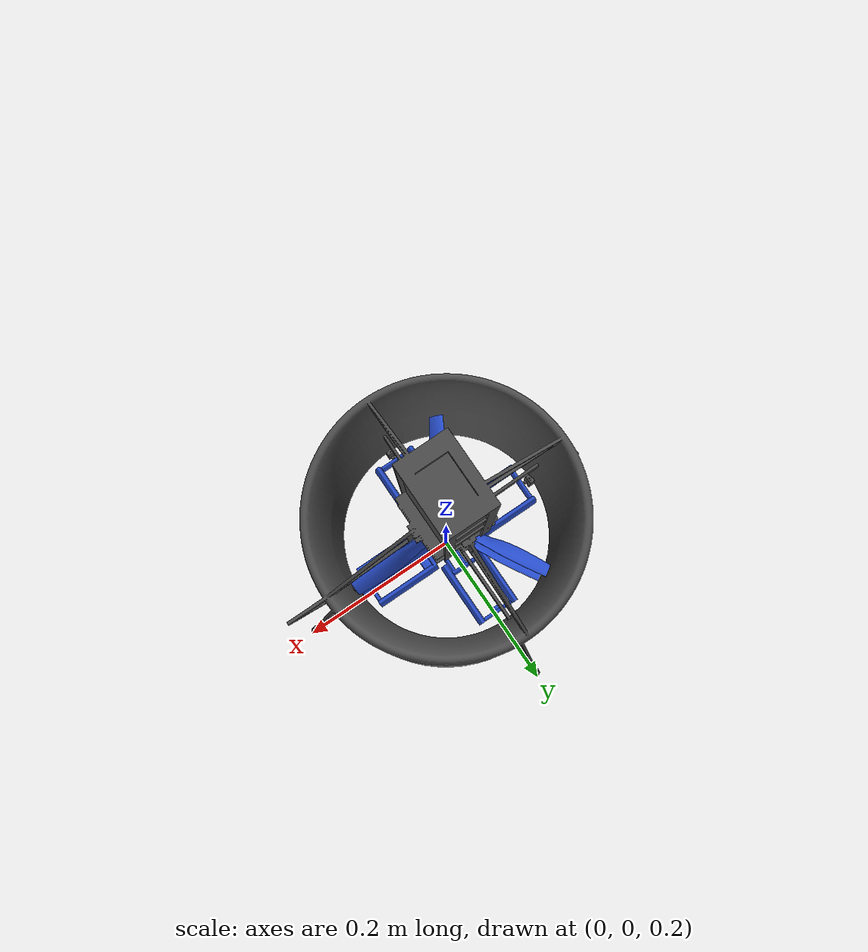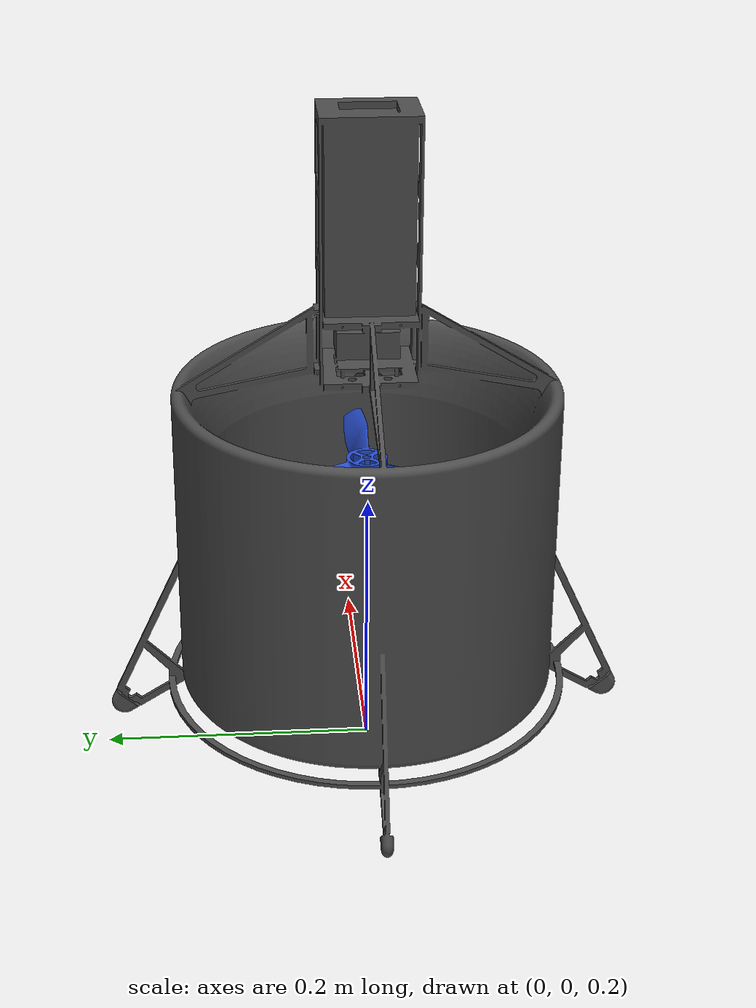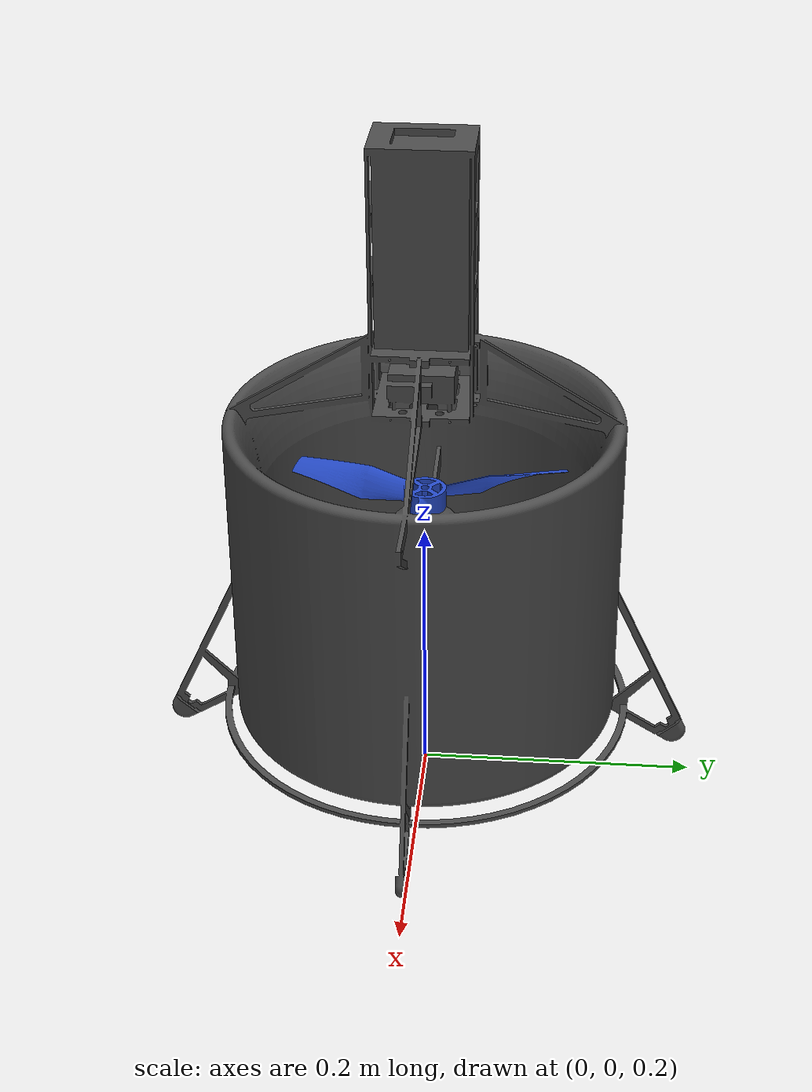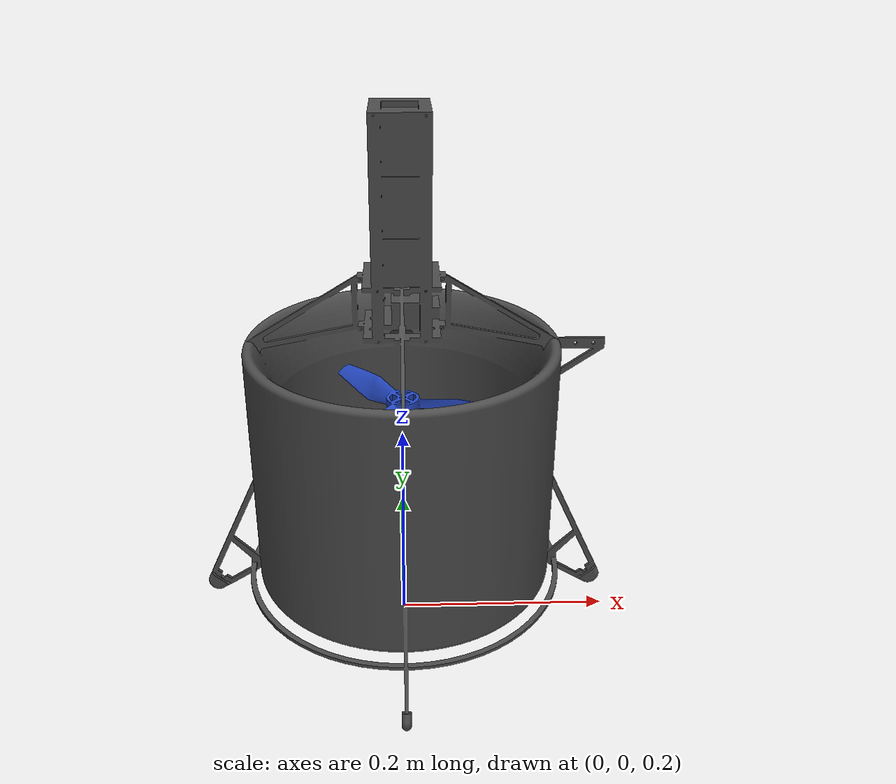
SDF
<?xml version="1.0"?>
<sdf version='1.5'>
  <model name='ductedfan2'>
    <pose>0 0 0.5 0 0 0</pose>
    <link name='base_link'>
      <pose>0 0 0 0 0 0</pose>
      <inertial>
          <mass>1.51082</mass>
          <inertia>
            <ixx>0.0276508</ixx>
            <ixy>0</ixy>
            <ixz>0.00026669</ixz>
            <iyy>0.0275263</iyy>
            <iyz>0.00028741</iyz>
            <izz>0.00619679</izz>
          </inertia>
          <pose>-4.1e-05 -7.6e-05 0.042069 0 -0 0</pose>
      </inertial>
      <collision name='base_link_collision'>
        <geometry>
          <box>
            <size>0.25 0.25 0.52</size>
          </box>
        </geometry>
      </collision>
      <visual name='base_link_visual'>
        <pose>0.0 0 -0.0 0 0 0</pose>
        <geometry>
          <mesh>
            <scale>1 1 1</scale>
            <uri>model://ductedfan2/meshes/DF - Product-gazebo-1.STL</uri>
          </mesh>
        </geometry>
        <material>
          <script>
            <name>Gazebo/DarkGrey</name>
            <uri>__default__</uri>
          </script>
        </material>
      </visual>
      <gravity>1</gravity>
      <velocity_decay/>
      <self_collide>0</self_collide>
    </link>
    <link name='ductedfan2/imu_link'>
      <pose>0 0 0 0 0 0</pose>
      <inertial>
        <pose>0 0 0 0 0 0</pose>
        <mass>0.015</mass>
        <inertia>
          <ixx>1e-05</ixx>
          <ixy>0</ixy>
          <ixz>0</ixz>
          <iyy>1e-05</iyy>
          <iyz>0</iyz>
          <izz>1e-05</izz>
        </inertia>
      </inertial>
    </link>
    <joint name='ductedfan2/imu_joint' type='revolute'>
      <child>ductedfan2/imu_link</child>
      <parent>base_link</parent>
      <axis>
        <xyz>1 0 0</xyz>
        <limit>
          <lower>0</lower>
          <upper>0</upper>
          <effort>0</effort>
          <velocity>0</velocity>
        </limit>
        <dynamics>
          <spring_reference>0</spring_reference>
          <spring_stiffness>0</spring_stiffness>
        </dynamics>
        <use_parent_model_frame>1</use_parent_model_frame>
      </axis>
    </joint>
    <link name='cspitch'>
      <inertial>
        <mass>0.149682</mass>
        <inertia>
          <ixx>0.00066011</ixx>
          <ixy>0</ixy>
          <ixz>0</ixz>
          <iyy>8.5e-05</iyy>
          <iyz>0</iyz>
          <izz>0.000689</izz>
        </inertia>
        <pose>0.000401 0 -0.210756 0 -0 0</pose>
      </inertial>
      <pose>0 0 0 0 -0 0</pose>
      <gravity>1</gravity>
      <self_collide>0</self_collide>
      <kinematic>0</kinematic>
      <enable_wind>0</enable_wind>
      <visual name='visual'>
        <pose>0 0 0 0 -0 0</pose>
        <geometry>
          <mesh>
            <uri>model://ductedfan2/meshes/DF - control surface-60-2-1.STL</uri>
            <scale>1 1 1</scale>
          </mesh>
        </geometry>
        <material>
          <script>
            <name>Gazebo/Blue</name>
            <uri>__default__</uri>
          </script>
        </material>
        <transparency>0</transparency>
        <cast_shadows>1</cast_shadows>
      </visual>
    </link>
    <link name='csroll'>
      <inertial>
        <mass>0.138453</mass>
        <inertia>
          <ixx>9.877e-05</ixx>
          <ixy>0</ixy>
          <ixz>0</ixz>
          <iyy>0.00067119</iyy>
          <iyz>0</iyz>
          <izz>0.00068256</izz>
        </inertia>
        <pose>0 0.000824 -0.20992 0 -0 0</pose>
      </inertial>
      <pose>0 0 0 0 -0 0</pose>
      <gravity>1</gravity>
      <self_collide>0</self_collide>
      <kinematic>0</kinematic>
      <enable_wind>0</enable_wind>
      <visual name='visual'>
        <pose>0 0 0 0 -0 0</pose>
        <geometry>
          <mesh>
            <uri>model://ductedfan2/meshes/DF - control surface-60-67-3.STL</uri>
            <scale>1 1 1</scale>
          </mesh>
        </geometry>
        <material>
          <script>
            <name>Gazebo/Blue</name>
            <uri>__default__</uri>
          </script>
        </material>
        <transparency>0</transparency>
        <cast_shadows>1</cast_shadows>
      </visual>
    </link>
    <link name='r1'>
      <inertial>
        <mass>0.015678</mass>
        <inertia>
          <ixx>1.851e-05</ixx>
          <ixy>0</ixy>
          <ixz>0</ixz>
          <iyy>1.855e-05</iyy>
          <iyz>0</iyz>
          <izz>3.648e-05</izz>
        </inertia>
        <pose>0.000403 0.000759 -0.071513 0 -0 0</pose>
      </inertial>
      <pose>0 0 0 0 -0 0</pose>
      <gravity>1</gravity>
      <self_collide>0</self_collide>
      <kinematic>0</kinematic>
      <enable_wind>0</enable_wind>
      <visual name='visual'>
        <pose>0 0 0 0 -0 0</pose>
        <geometry>
          <mesh>
            <uri>model://ductedfan2/meshes/DF - fan-1.STL</uri>
            <scale>1 1 1</scale>
          </mesh>
        </geometry>
        <material>
          <script>
            <name>Gazebo/Blue</name>
            <uri>__default__</uri>
          </script>
        </material>
        <transparency>0</transparency>
        <cast_shadows>1</cast_shadows>
      </visual>
    </link>
    <link name='r2'>
      <inertial>
        <mass>0.015678</mass>
        <inertia>
          <ixx>1.851e-05</ixx>
          <ixy>0</ixy>
          <ixz>0</ixz>
          <iyy>1.855e-05</iyy>
          <iyz>0</iyz>
          <izz>3.648e-05</izz>
        </inertia>
        <pose>0.000403 0.000759 -0.154513 0 -0 0</pose>
      </inertial>
      <pose>0 0 0 0 -0 0</pose>
      <gravity>1</gravity>
      <self_collide>0</self_collide>
      <kinematic>0</kinematic>
      <enable_wind>0</enable_wind>
      <visual name='visual'>
        <pose>0 0 0 0 -0 0</pose>
        <geometry>
          <mesh>
            <uri>model://ductedfan2/meshes/DF - fan-2.STL</uri>
            <scale>1 1 1</scale>
          </mesh>
        </geometry>
        <material>
          <script>
            <name>Gazebo/Blue</name>
            <uri>__default__</uri>
          </script>
        </material>
        <transparency>0</transparency>
        <cast_shadows>1</cast_shadows>
      </visual>
    </link>
    <joint name='cspitch_joint' type='revolute'>
      <parent>base_link</parent>
      <child>cspitch</child>
      <pose>0.00037 0 -0.19763 0 -0 0</pose>
      <axis>
        <xyz>0 1 0</xyz>
        <limit>
          <lower>-0.35</lower>
          <upper>0.35</upper>
        </limit>
        <dynamics>
          <damping>0.01</damping>
          <friction>0.0</friction>
          <spring_reference>0</spring_reference>
          <spring_stiffness>0</spring_stiffness>
        </dynamics>
      </axis>
    </joint>
    <joint name='csroll_joint' type='revolute'>
      <parent>base_link</parent>
      <child>csroll</child>
      <pose>0 0.00074 -0.19763 0 -0 0</pose>
      <axis>
        <xyz>1 0 0</xyz>
        <limit>
          <lower>-0.35</lower>
          <upper>0.35</upper>
        </limit>
        <dynamics>
          <damping>0.01</damping>
          <friction>0.0</friction>
          <spring_reference>0</spring_reference>
          <spring_stiffness>0</spring_stiffness>
        </dynamics>
      </axis>
    </joint>
    <joint name='r1_joint' type='revolute'>
      <parent>base_link</parent>
      <child>r1</child>
      <pose>0.000403 0.000759 -0.071513 0 -0 0</pose>
      <axis>
        <xyz>0 0 1</xyz>
        <limit>
          <lower>-1e+16</lower>
          <upper>1e+16</upper>
          <effort>-1</effort>
          <velocity>-1</velocity>
        </limit>
        <dynamics>
          <spring_reference>0</spring_reference>
          <spring_stiffness>0</spring_stiffness>
          <damping>0.0</damping>
          <friction>0</friction>
        </dynamics>
      </axis>
      <physics>
        <ode>
          <limit>
            <cfm>0</cfm>
            <erp>0.2</erp>
          </limit>
          <suspension>
            <cfm>0</cfm>
            <erp>0.2</erp>
          </suspension>
        </ode>
      </physics>
    </joint>
    <joint name='r2_joint' type='revolute'>
      <parent>base_link</parent>
      <child>r2</child>
      <pose>0.000403 0.000759 -0.154513 0 -0 0</pose>
      <axis>
        <xyz>0 0 1</xyz>
        <limit>
          <lower>-1e+16</lower>
          <upper>1e+16</upper>
          <effort>-1</effort>
          <velocity>-1</velocity>
        </limit>
        <dynamics>
          <spring_reference>0</spring_reference>
          <spring_stiffness>0</spring_stiffness>
          <damping>0.0</damping>
          <friction>0</friction>
        </dynamics>
      </axis>
      <physics>
        <ode>
          <limit>
            <cfm>0</cfm>
            <erp>0.2</erp>
          </limit>
          <suspension>
            <cfm>0</cfm>
            <erp>0.2</erp>
          </suspension>
        </ode>
      </physics>
    </joint>
    <include>
      <uri>model://gps</uri>
      <pose>0 0 0 0 0 0</pose>
      <name>gps</name>
    </include>
    <joint name='gps_joint' type='fixed'>
      <child>gps::link</child>
      <parent>base_link</parent>
    </joint>
    <plugin name="csroll_plugin" filename="libLiftDragPlugin.so">
      <is_ductedfan>1</is_ductedfan>
      <num_of_propeller>2</num_of_propeller>
      <wind_from_propeller>
        <propeller name="up_propeller">
          <propeller_index>0</propeller_index>
          <propeller_joint>r1_joint</propeller_joint>
          <propeller_wind_constant>0.18</propeller_wind_constant>
        </propeller>
        <propeller name="down_propeller">
          <propeller_index>1</propeller_index>
          <propeller_joint>r2_joint</propeller_joint>
          <propeller_wind_constant>0.18</propeller_wind_constant>
        </propeller>
      </wind_from_propeller>
      <a0>0</a0>
      <cla>0</cla>
      <cda>0</cda>
      <cma>0</cma>
      <alpha_stall>0.6</alpha_stall>
      <cla_stall>0</cla_stall>
      <cda_stall>0.0</cda_stall>
      <cma_stall>0</cma_stall>
      <cp>0 0 -0.20763</cp>
      <area>0.0018</area>
      <air_density>1.2041</air_density>
      <forward>0 0 1</forward>
      <upward>0 -1 0</upward>
      <link_name>base_link</link_name>
      <control_joint_name>csroll_joint</control_joint_name>
      <control_joint_rad_to_cl>8</control_joint_rad_to_cl>
      <robotNamespace></robotNamespace>
      <windSubTopic>world_wind</windSubTopic>
    </plugin>
    <plugin name="cspitch_plugin" filename="libLiftDragPlugin.so">
      <is_ductedfan>1</is_ductedfan>
      <num_of_propeller>2</num_of_propeller>
      <wind_from_propeller>
        <propeller name="up_propeller">
          <propeller_index>0</propeller_index>
          <propeller_joint>r1_joint</propeller_joint>
          <propeller_wind_constant>0.18</propeller_wind_constant>
        </propeller>
        <propeller name="down_propeller">
          <propeller_index>1</propeller_index>
          <propeller_joint>r2_joint</propeller_joint>
          <propeller_wind_constant>0.18</propeller_wind_constant>
        </propeller>
      </wind_from_propeller>
      <a0>0</a0>
      <cla>0</cla>
      <cda>0</cda>
      <cma>0</cma>
      <alpha_stall>0.6</alpha_stall>
      <cla_stall>0</cla_stall>
      <cda_stall>0.0</cda_stall>
      <cma_stall>0</cma_stall>
      <cp>0 0 -0.20763</cp>
      <area>0.0018</area>
      <air_density>1.2041</air_density>
      <forward>0 0 1</forward>
      <upward>1 0 0</upward>
      <link_name>base_link</link_name>
      <control_joint_name>cspitch_joint</control_joint_name>
      <control_joint_rad_to_cl>8</control_joint_rad_to_cl>
      <robotNamespace></robotNamespace>
      <windSubTopic>world_wind</windSubTopic>
    </plugin>
    <plugin name='r1_plugin' filename='libgazebo_motor_model.so'>
      <robotNamespace></robotNamespace>
      <jointName>r1_joint</jointName>
      <linkName>r1</linkName>
      <turningDirection>cw</turningDirection>
      <timeConstantUp>0.0125</timeConstantUp>
      <timeConstantDown>0.025</timeConstantDown>
      <maxRotVelocity>2000</maxRotVelocity>
      <motorConstant>8.54858e-06</motorConstant>
      <momentConstant>0.01</momentConstant>
      <commandSubTopic>/gazebo/command/motor_speed</commandSubTopic>
      <motorNumber>0</motorNumber>
      <rotorDragCoefficient>8.06428e-05</rotorDragCoefficient>
      <rollingMomentCoefficient>1e-06</rollingMomentCoefficient>
      <motorSpeedPubTopic>/motor_speed/0</motorSpeedPubTopic>
      <rotorVelocitySlowdownSim>10</rotorVelocitySlowdownSim>
      <robotNamespace></robotNamespace>
    </plugin>
    <plugin name='r2_plugin' filename='libgazebo_motor_model.so'>
      <robotNamespace></robotNamespace>
      <jointName>r2_joint</jointName>
      <linkName>r2</linkName>
      <turningDirection>ccw</turningDirection>
      <timeConstantUp>0.0125</timeConstantUp>
      <timeConstantDown>0.025</timeConstantDown>
      <maxRotVelocity>2000</maxRotVelocity>
      <motorConstant>8.54858e-06</motorConstant>
      <momentConstant>0.01</momentConstant>
      <commandSubTopic>/gazebo/command/motor_speed</commandSubTopic>
      <motorNumber>1</motorNumber>
      <rotorDragCoefficient>8.06428e-05</rotorDragCoefficient>
      <rollingMomentCoefficient>1e-06</rollingMomentCoefficient>
      <motorSpeedPubTopic>/motor_speed/1</motorSpeedPubTopic>
      <rotorVelocitySlowdownSim>10</rotorVelocitySlowdownSim>
    </plugin>
    <plugin name='gazebo_imu_plugin' filename='libgazebo_imu_plugin.so'>
      <robotNamespace></robotNamespace>
      <linkName>ductedfan2/imu_link</linkName>
      <imuTopic>/imu</imuTopic>
      <gyroscopeNoiseDensity>0.00018665</gyroscopeNoiseDensity>
      <gyroscopeRandomWalk>3.8785e-05</gyroscopeRandomWalk>
      <gyroscopeBiasCorrelationTime>1000.0</gyroscopeBiasCorrelationTime>
      <gyroscopeTurnOnBiasSigma>0.0087</gyroscopeTurnOnBiasSigma>
      <accelerometerNoiseDensity>0.00186</accelerometerNoiseDensity>
      <accelerometerRandomWalk>0.006</accelerometerRandomWalk>
      <accelerometerBiasCorrelationTime>300.0</accelerometerBiasCorrelationTime>
      <accelerometerTurnOnBiasSigma>0.196</accelerometerTurnOnBiasSigma>
    </plugin>
    <plugin name='groundtruth_plugin' filename='libgazebo_groundtruth_plugin.so'>
      <robotNamespace/>
    </plugin>
    <plugin name='magnetometer_plugin' filename='libgazebo_magnetometer_plugin.so'>
      <robotNamespace/>
      <pubRate>100</pubRate>
      <noiseDensity>0.0004</noiseDensity>
      <randomWalk>6.4e-06</randomWalk>
      <biasCorrelationTime>600</biasCorrelationTime>
      <magTopic>/mag</magTopic>
    </plugin>
    <plugin name='barometer_plugin' filename='libgazebo_barometer_plugin.so'>
      <robotNamespace/>
      <pubRate>50</pubRate>
      <baroTopic>/baro</baroTopic>
    </plugin>
    <plugin name='mavlink_interface' filename='libgazebo_mavlink_interface.so'>
      <robotNamespace></robotNamespace>
      <imuSubTopic>/imu</imuSubTopic>
      <magSubTopic>/mag</magSubTopic>
      <baroSubTopic>/baro</baroSubTopic>
      <mavlink_addr>INADDR_ANY</mavlink_addr>
      <mavlink_tcp_port>4560</mavlink_tcp_port>
      <mavlink_udp_port>14560</mavlink_udp_port>
      <serialEnabled>0</serialEnabled>
      <serialDevice>/dev/ttyACM0</serialDevice>
      <baudRate>921600</baudRate>
      <qgc_addr>INADDR_ANY</qgc_addr>
      <qgc_udp_port>14550</qgc_udp_port>
      <sdk_addr>INADDR_ANY</sdk_addr>
      <sdk_udp_port>14540</sdk_udp_port>
      <hil_mode>0</hil_mode>
      <hil_state_level>false</hil_state_level>
      <enable_lockstep>true</enable_lockstep>
      <use_tcp>true</use_tcp>
      <motorSpeedCommandPubTopic>/gazebo/command/motor_speed</motorSpeedCommandPubTopic>
      <control_channels>
        <channel name="up_rotor">
          <input_index>0</input_index>
          <input_offset>0</input_offset>
          <input_scaling>1500</input_scaling>
          <zero_position_disarmed>0</zero_position_disarmed>
          <zero_position_armed>0</zero_position_armed>
          <joint_control_type>velocity</joint_control_type>
          <joint_name>r1_joint</joint_name>
        </channel>
        <channel name="down_rotor">
          <input_index>1</input_index>
          <input_offset>0</input_offset>
          <input_scaling>1500</input_scaling>
          <zero_position_disarmed>0</zero_position_disarmed>
          <zero_position_armed>0</zero_position_armed>
          <joint_control_type>velocity</joint_control_type>
          <joint_name>r2_joint</joint_name>
        </channel>
        <channel name="roll">
          <input_index>2</input_index>
          <input_offset>0</input_offset>
          <input_scaling>-0.35</input_scaling>
          <zero_position_disarmed>0</zero_position_disarmed>
          <zero_position_armed>0</zero_position_armed>
          <joint_control_type>position</joint_control_type>
          <joint_name>csroll_joint</joint_name>
          <joint_control_pid>
            <p>1</p>
            <i>0</i>
            <d>0</d>
            <iMax>0</iMax>
            <iMin>0</iMin>
            <cmdMax>20</cmdMax>
            <cmdMin>-20</cmdMin>
          </joint_control_pid>
        </channel>
        <channel name="pitch">
          <input_index>3</input_index>
          <input_offset>0</input_offset>
          <input_scaling>-0.35</input_scaling>
          <zero_position_disarmed>0</zero_position_disarmed>
          <zero_position_armed>0</zero_position_armed>
          <joint_control_type>position</joint_control_type>
          <joint_name>cspitch_joint</joint_name>
          <joint_control_pid>
            <p>1</p>
            <i>0.0</i>
            <d>0</d>
            <iMax>0.5</iMax>
            <iMin>-0.5</iMin>
            <cmdMax>10</cmdMax>
            <cmdMin>-10</cmdMin>
            <errMax>20</errMax>
          </joint_control_pid>
        </channel>
      </control_channels>
    </plugin>
    <static>0</static>
  </model>
</sdf>

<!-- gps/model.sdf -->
<sdf version="1.6">
  <model name="gps">
    <link name="link">
      <pose>0 0 0 0 0 0</pose>
      <inertial>
        <pose>0 0 0 0 0 0</pose>
        <mass>0.015</mass>
        <inertia>
          <ixx>1e-05</ixx>
          <ixy>0</ixy>
          <ixz>0</ixz>
          <iyy>1e-05</iyy>
          <iyz>0</iyz>
          <izz>1e-05</izz>
        </inertia>
      </inertial>
      <visual name="visual">
        <geometry>
          <cylinder>
            <radius>0.01</radius>
            <length>0.002</length>
          </cylinder>
        </geometry>
        <material>
          <script>
            <name>Gazebo/Black</name>
            <uri>file://usr/share/gz/gz-sim8/media/gazebo.material</uri>
          </script>
        </material>
      </visual>
      <sensor name="gps" type="gps">
        <pose>0 0 0 0 0 0</pose>
        <update_rate>5.0</update_rate>
        <always_on>true</always_on>
        <visualize>false</visualize>
        <!-- GpsSensor noise currently not used -->
        <plugin name="gps_plugin" filename="libgazebo_gps_plugin.so">
          <robotNamespace></robotNamespace>
          <gpsNoise>true</gpsNoise>
          <gpsXYRandomWalk>2.0</gpsXYRandomWalk>
          <gpsZRandomWalk>4.0</gpsZRandomWalk>
          <gpsXYNoiseDensity>2.0e-4</gpsXYNoiseDensity>
          <gpsZNoiseDensity>4.0e-4</gpsZNoiseDensity>
          <gpsVXYNoiseDensity>0.2</gpsVXYNoiseDensity>
          <gpsVZNoiseDensity>0.4</gpsVZNoiseDensity>
        </plugin>
      </sensor>
    </link>
  </model>
</sdf>
